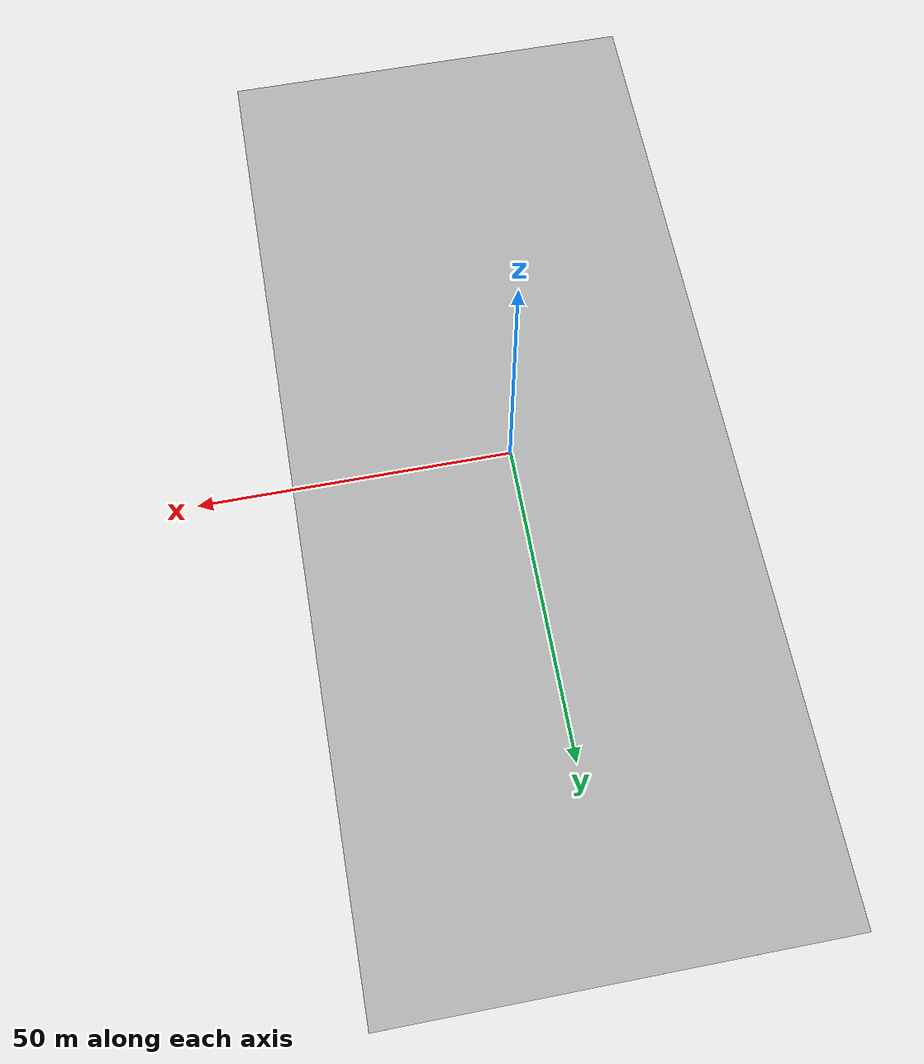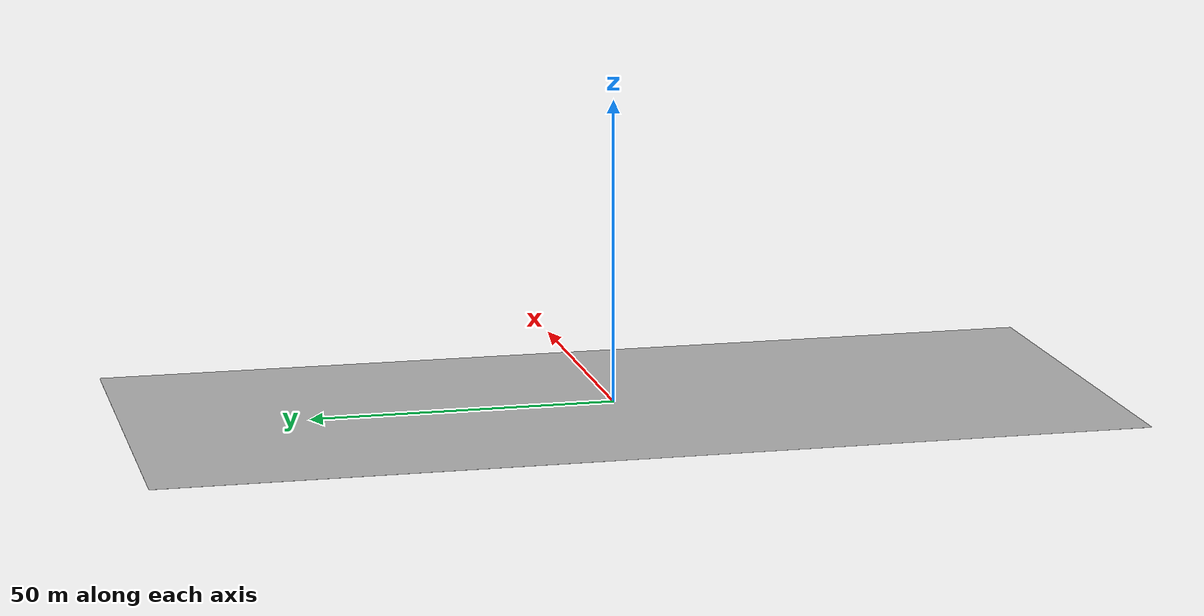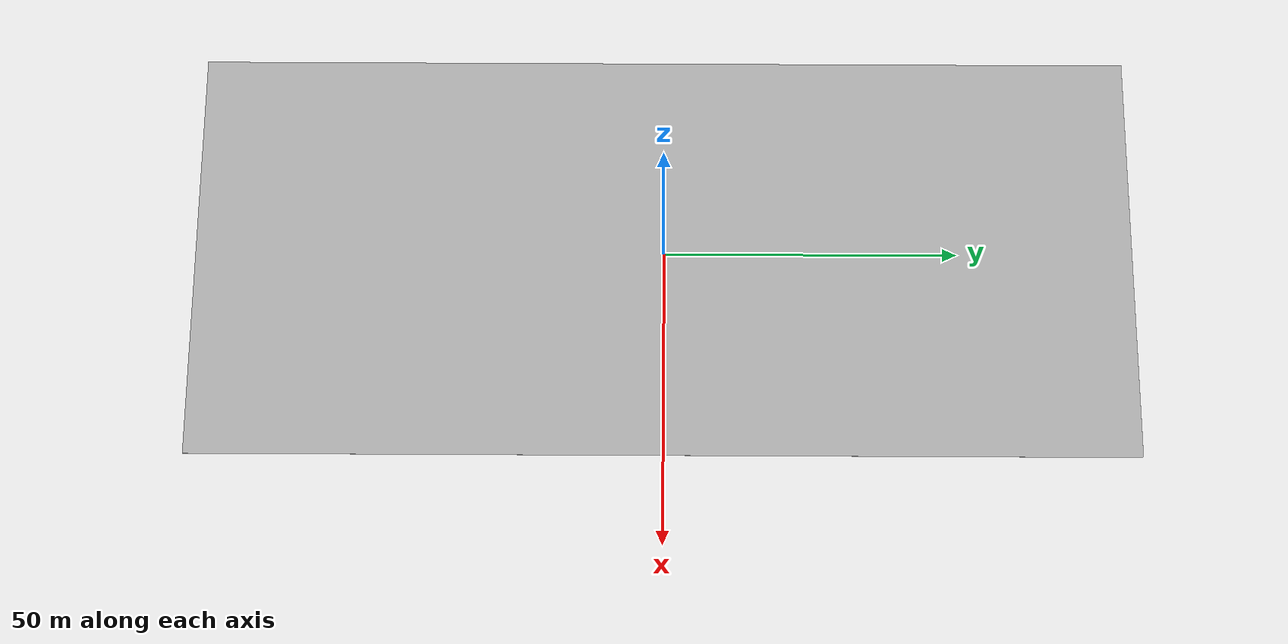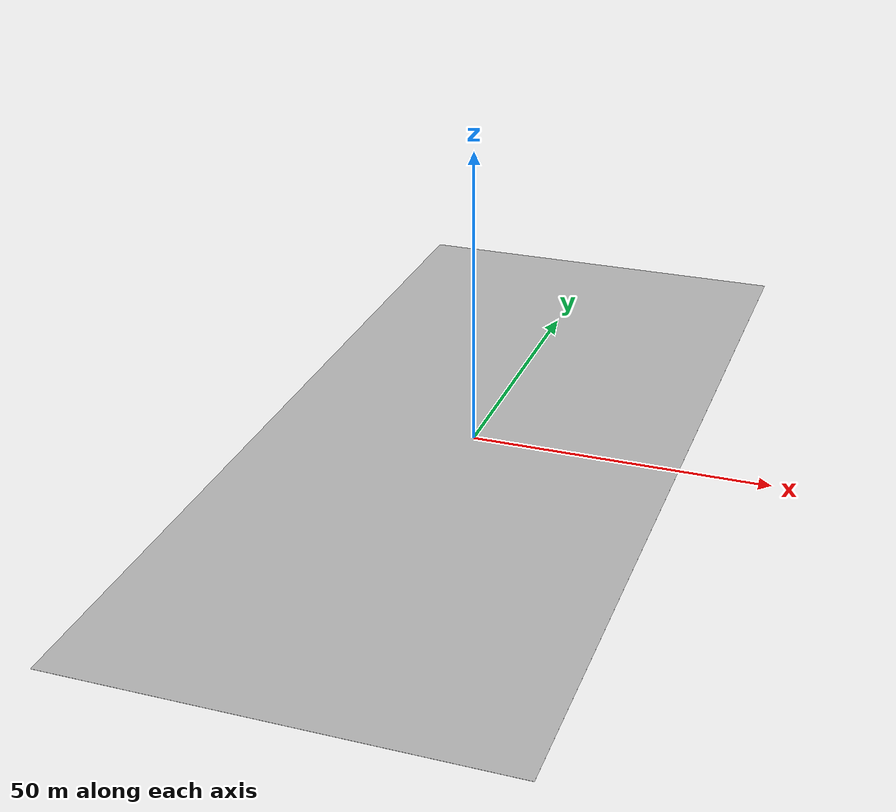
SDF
<?xml version="1.0" ?>
<sdf version="1.5">
  <model name="parking_garage_ground_plane">
    <static>true</static>
    <link name="link">
      <collision name="collision">
        <geometry>
          <box>
            <size>70 160 0.02</size>
          </box>
        </geometry>
          <surface>
            <friction>
              <ode>
                <mu>1</mu>
                <mu2>1</mu2>
                <fdir1>0.000000 0.000000 1.000000</fdir1>
              </ode>
            </friction>
            <bounce>
              <restitution_coefficient>0.000000</restitution_coefficient>
              <threshold>100000.000000</threshold>
            </bounce>
            <contact>
              <ode>
                <soft_cfm>9.00000</soft_cfm>
                <soft_erp>9.00000</soft_erp>
                <kp>100.000000</kp>
                <kd>1.000000</kd>
                <max_vel>1000.000000</max_vel>
                <min_depth>0.001000</min_depth>
              </ode>
            </contact>
          </surface>
      </collision>
      <visual name="visual">
        <cast_shadows>false</cast_shadows>
        <geometry>
          <box>
            <size>70 160 0.02</size>
          </box>
        </geometry>
        <material>
            <ambient>0.3 0.3 0.3 1</ambient>
            <diffuse>0.7 0.7 0.7 1</diffuse>
            <specular>0.01 0.01 0.01 1</specular>
        </material>
      </visual>
    </link>
  </model>
</sdf>
